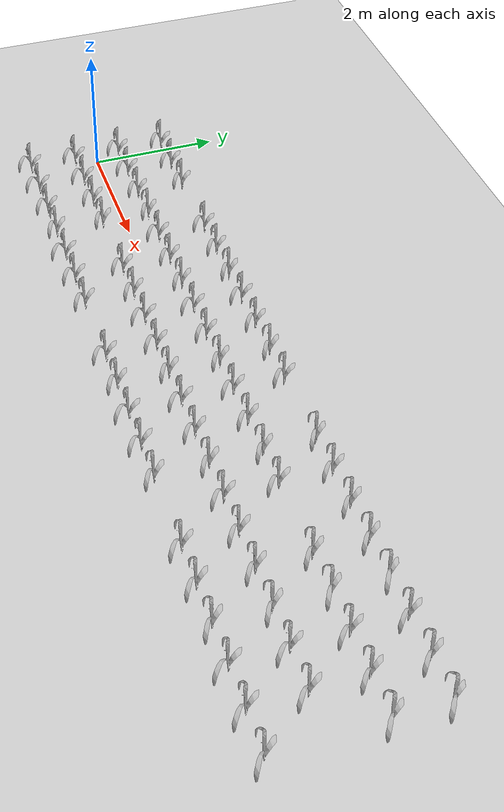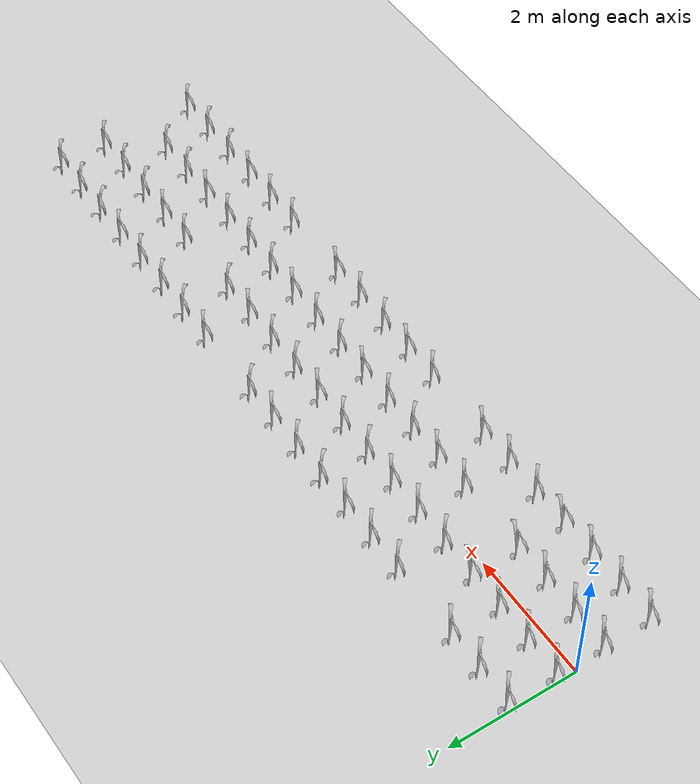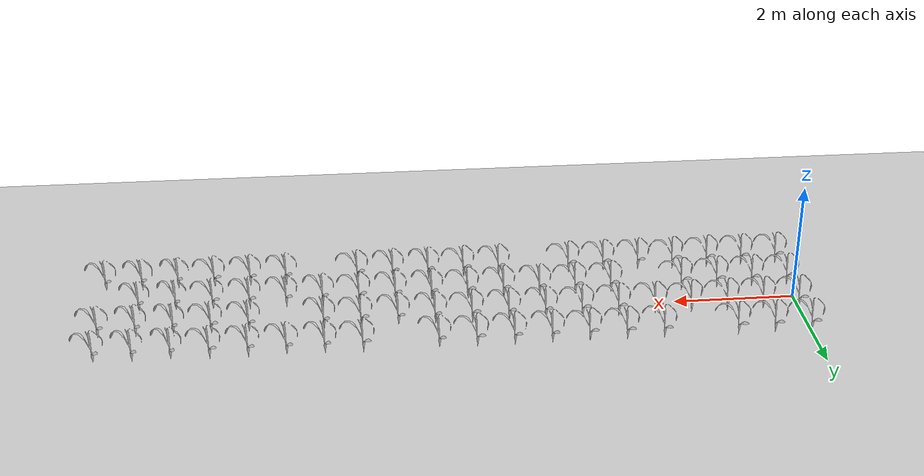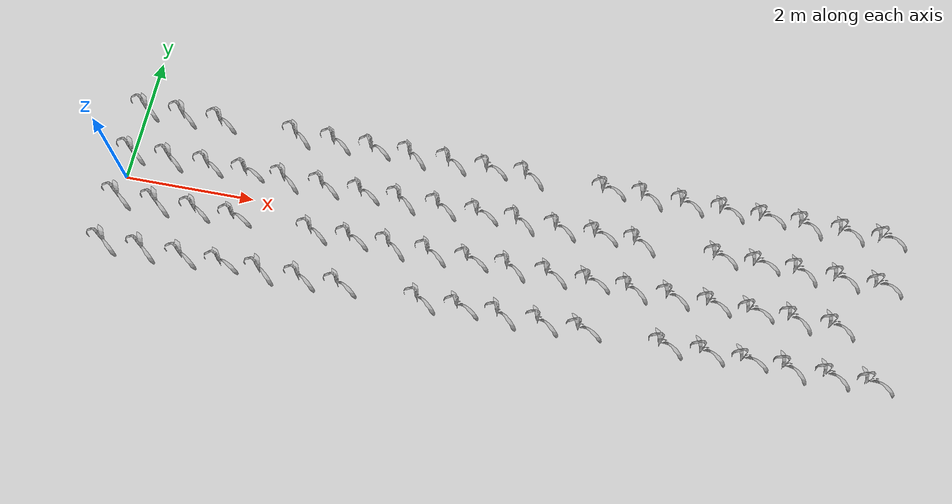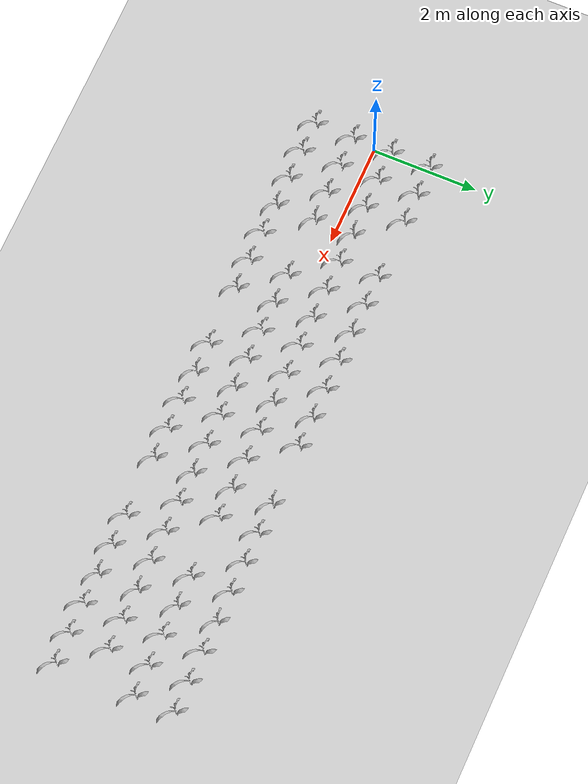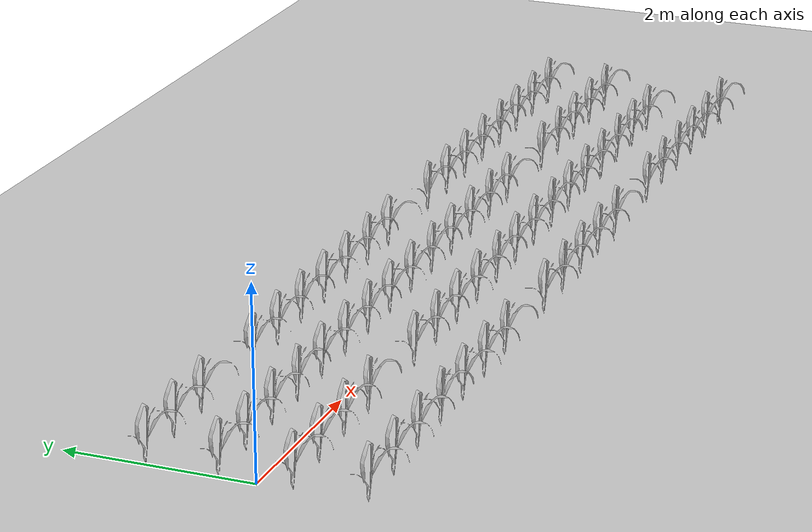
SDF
<sdf version="1.6">
 <world name="agbot_corn_rows">
  <physics type="ode">
   <max_step_size>0.001</max_step_size>
   <real_time_update_rate>1000</real_time_update_rate>
   <real_time_factor>1</real_time_factor>
  </physics>
  <scene>
   <sky><clouds><speed>12</speed></clouds></sky>
   <ambient>0.4 0.4 0.4 1</ambient>
   <background>0.7 0.7 0.7 1</background>
   <shadows>true</shadows>
  </scene>
  <include><uri>model://sun</uri></include>
  <include><uri>model://dirt_ground</uri></include>
  <include>
   <uri>model://maize_01</uri>
   <name>maize_r0_c00</name>
   <pose>0.00 -1.125 0.0  0 0 0.10</pose>
   <static>true</static>
  </include>
  <include>
   <uri>model://maize_01</uri>
   <name>maize_r0_c02</name>
   <pose>0.60 -1.125 0.0  0 0 0.08</pose>
   <static>true</static>
  </include>
  <include>
   <uri>model://maize_01</uri>
   <name>maize_r0_c04</name>
   <pose>1.20 -1.125 0.0  0 0 0.17</pose>
   <static>true</static>
  </include>
  <include>
   <uri>model://maize_01</uri>
   <name>maize_r0_c06</name>
   <pose>1.80 -1.125 0.0  0 0 0.30</pose>
   <static>true</static>
  </include>
  <include>
   <uri>model://maize_01</uri>
   <name>maize_r0_c08</name>
   <pose>2.40 -1.125 0.0  0 0 0.06</pose>
   <static>true</static>
  </include>
  <include>
   <uri>model://maize_01</uri>
   <name>maize_r0_c10</name>
   <pose>3.00 -1.125 0.0  0 0 0.14</pose>
   <static>true</static>
  </include>
  <include>
   <uri>model://maize_01</uri>
   <name>maize_r0_c12</name>
   <pose>3.60 -1.125 0.0  0 0 0.21</pose>
   <static>true</static>
  </include>
  <include>
   <uri>model://maize_01</uri>
   <name>maize_r0_c16</name>
   <pose>4.80 -1.125 0.0  0 0 0.11</pose>
   <static>true</static>
  </include>
  <include>
   <uri>model://maize_01</uri>
   <name>maize_r0_c18</name>
   <pose>5.40 -1.125 0.0  0 0 0.24</pose>
   <static>true</static>
  </include>
  <include>
   <uri>model://maize_01</uri>
   <name>maize_r0_c20</name>
   <pose>6.00 -1.125 0.0  0 0 0.07</pose>
   <static>true</static>
  </include>
  <include>
   <uri>model://maize_01</uri>
   <name>maize_r0_c22</name>
   <pose>6.60 -1.125 0.0  0 0 0.13</pose>
   <static>true</static>
  </include>
  <include>
   <uri>model://maize_01</uri>
   <name>maize_r0_c24</name>
   <pose>7.20 -1.125 0.0  0 0 0.26</pose>
   <static>true</static>
  </include>
  <include>
   <uri>model://maize_01</uri>
   <name>maize_r0_c28</name>
   <pose>8.40 -1.125 0.0  0 0 0.15</pose>
   <static>true</static>
  </include>
  <include>
   <uri>model://maize_01</uri>
   <name>maize_r0_c30</name>
   <pose>9.00 -1.125 0.0  0 0 0.19</pose>
   <static>true</static>
  </include>
  <include>
   <uri>model://maize_01</uri>
   <name>maize_r0_c32</name>
   <pose>9.60 -1.125 0.0  0 0 0.28</pose>
   <static>true</static>
  </include>
  <include>
   <uri>model://maize_01</uri>
   <name>maize_r0_c34</name>
   <pose>10.20 -1.125 0.0  0 0 0.05</pose>
   <static>true</static>
  </include>
  <include>
   <uri>model://maize_01</uri>
   <name>maize_r0_c36</name>
   <pose>10.80 -1.125 0.0  0 0 0.12</pose>
   <static>true</static>
  </include>
  <include>
   <uri>model://maize_01</uri>
   <name>maize_r0_c38</name>
   <pose>11.40 -1.125 0.0  0 0 0.22</pose>
   <static>true</static>
  </include>
  <include>
   <uri>model://maize_01</uri>
   <name>maize_r1_c00</name>
   <pose>0.00 -0.375 0.0  0 0 0.10</pose>
   <static>true</static>
  </include>
  <include>
   <uri>model://maize_01</uri>
   <name>maize_r1_c02</name>
   <pose>0.60 -0.375 0.0  0 0 0.08</pose>
   <static>true</static>
  </include>
  <include>
   <uri>model://maize_01</uri>
   <name>maize_r1_c04</name>
   <pose>1.20 -0.375 0.0  0 0 0.17</pose>
   <static>true</static>
  </include>
  <include>
   <uri>model://maize_01</uri>
   <name>maize_r1_c06</name>
   <pose>1.80 -0.375 0.0  0 0 0.30</pose>
   <static>true</static>
  </include>
  <include>
   <uri>model://maize_01</uri>
   <name>maize_r1_c10</name>
   <pose>3.00 -0.375 0.0  0 0 0.14</pose>
   <static>true</static>
  </include>
  <include>
   <uri>model://maize_01</uri>
   <name>maize_r1_c12</name>
   <pose>3.60 -0.375 0.0  0 0 0.21</pose>
   <static>true</static>
  </include>
  <include>
   <uri>model://maize_01</uri>
   <name>maize_r1_c14</name>
   <pose>4.20 -0.375 0.0  0 0 0.04</pose>
   <static>true</static>
  </include>
  <include>
   <uri>model://maize_01</uri>
   <name>maize_r1_c16</name>
   <pose>4.80 -0.375 0.0  0 0 0.11</pose>
   <static>true</static>
  </include>
  <include>
   <uri>model://maize_01</uri>
   <name>maize_r1_c18</name>
   <pose>5.40 -0.375 0.0  0 0 0.24</pose>
   <static>true</static>
  </include>
  <include>
   <uri>model://maize_01</uri>
   <name>maize_r1_c20</name>
   <pose>6.00 -0.375 0.0  0 0 0.07</pose>
   <static>true</static>
  </include>
  <include>
   <uri>model://maize_01</uri>
   <name>maize_r1_c22</name>
   <pose>6.60 -0.375 0.0  0 0 0.13</pose>
   <static>true</static>
  </include>
  <include>
   <uri>model://maize_01</uri>
   <name>maize_r1_c24</name>
   <pose>7.20 -0.375 0.0  0 0 0.26</pose>
   <static>true</static>
  </include>
  <include>
   <uri>model://maize_01</uri>
   <name>maize_r1_c26</name>
   <pose>7.80 -0.375 0.0  0 0 0.09</pose>
   <static>true</static>
  </include>
  <include>
   <uri>model://maize_01</uri>
   <name>maize_r1_c28</name>
   <pose>8.40 -0.375 0.0  0 0 0.15</pose>
   <static>true</static>
  </include>
  <include>
   <uri>model://maize_01</uri>
   <name>maize_r1_c30</name>
   <pose>9.00 -0.375 0.0  0 0 0.19</pose>
   <static>true</static>
  </include>
  <include>
   <uri>model://maize_01</uri>
   <name>maize_r1_c32</name>
   <pose>9.60 -0.375 0.0  0 0 0.28</pose>
   <static>true</static>
  </include>
  <include>
   <uri>model://maize_01</uri>
   <name>maize_r1_c34</name>
   <pose>10.20 -0.375 0.0  0 0 0.05</pose>
   <static>true</static>
  </include>
  <include>
   <uri>model://maize_01</uri>
   <name>maize_r1_c36</name>
   <pose>10.80 -0.375 0.0  0 0 0.12</pose>
   <static>true</static>
  </include>
  <include>
   <uri>model://maize_01</uri>
   <name>maize_r2_c00</name>
   <pose>0.00 0.375 0.0  0 0 0.10</pose>
   <static>true</static>
  </include>
  <include>
   <uri>model://maize_01</uri>
   <name>maize_r2_c02</name>
   <pose>0.60 0.375 0.0  0 0 0.08</pose>
   <static>true</static>
  </include>
  <include>
   <uri>model://maize_01</uri>
   <name>maize_r2_c04</name>
   <pose>1.20 0.375 0.0  0 0 0.17</pose>
   <static>true</static>
  </include>
  <include>
   <uri>model://maize_01</uri>
   <name>maize_r2_c06</name>
   <pose>1.80 0.375 0.0  0 0 0.30</pose>
   <static>true</static>
  </include>
  <include>
   <uri>model://maize_01</uri>
   <name>maize_r2_c08</name>
   <pose>2.40 0.375 0.0  0 0 0.06</pose>
   <static>true</static>
  </include>
  <include>
   <uri>model://maize_01</uri>
   <name>maize_r2_c10</name>
   <pose>3.00 0.375 0.0  0 0 0.14</pose>
   <static>true</static>
  </include>
  <include>
   <uri>model://maize_01</uri>
   <name>maize_r2_c12</name>
   <pose>3.60 0.375 0.0  0 0 0.21</pose>
   <static>true</static>
  </include>
  <include>
   <uri>model://maize_01</uri>
   <name>maize_r2_c14</name>
   <pose>4.20 0.375 0.0  0 0 0.04</pose>
   <static>true</static>
  </include>
  <include>
   <uri>model://maize_01</uri>
   <name>maize_r2_c16</name>
   <pose>4.80 0.375 0.0  0 0 0.11</pose>
   <static>true</static>
  </include>
  <include>
   <uri>model://maize_01</uri>
   <name>maize_r2_c18</name>
   <pose>5.40 0.375 0.0  0 0 0.24</pose>
   <static>true</static>
  </include>
  <include>
   <uri>model://maize_01</uri>
   <name>maize_r2_c20</name>
   <pose>6.00 0.375 0.0  0 0 0.07</pose>
   <static>true</static>
  </include>
  <include>
   <uri>model://maize_01</uri>
   <name>maize_r2_c22</name>
   <pose>6.60 0.375 0.0  0 0 0.13</pose>
   <static>true</static>
  </include>
  <include>
   <uri>model://maize_01</uri>
   <name>maize_r2_c24</name>
   <pose>7.20 0.375 0.0  0 0 0.26</pose>
   <static>true</static>
  </include>
  <include>
   <uri>model://maize_01</uri>
   <name>maize_r2_c26</name>
   <pose>7.80 0.375 0.0  0 0 0.09</pose>
   <static>true</static>
  </include>
  <include>
   <uri>model://maize_01</uri>
   <name>maize_r2_c30</name>
   <pose>9.00 0.375 0.0  0 0 0.19</pose>
   <static>true</static>
  </include>
  <include>
   <uri>model://maize_01</uri>
   <name>maize_r2_c32</name>
   <pose>9.60 0.375 0.0  0 0 0.28</pose>
   <static>true</static>
  </include>
  <include>
   <uri>model://maize_01</uri>
   <name>maize_r2_c34</name>
   <pose>10.20 0.375 0.0  0 0 0.05</pose>
   <static>true</static>
  </include>
  <include>
   <uri>model://maize_01</uri>
   <name>maize_r2_c36</name>
   <pose>10.80 0.375 0.0  0 0 0.12</pose>
   <static>true</static>
  </include>
  <include>
   <uri>model://maize_01</uri>
   <name>maize_r2_c38</name>
   <pose>11.40 0.375 0.0  0 0 0.22</pose>
   <static>true</static>
  </include>
  <include>
   <uri>model://maize_01</uri>
   <name>maize_r3_c00</name>
   <pose>0.00 1.125 0.0  0 0 0.10</pose>
   <static>true</static>
  </include>
  <include>
   <uri>model://maize_01</uri>
   <name>maize_r3_c02</name>
   <pose>0.60 1.125 0.0  0 0 0.08</pose>
   <static>true</static>
  </include>
  <include>
   <uri>model://maize_01</uri>
   <name>maize_r3_c04</name>
   <pose>1.20 1.125 0.0  0 0 0.17</pose>
   <static>true</static>
  </include>
  <include>
   <uri>model://maize_01</uri>
   <name>maize_r3_c08</name>
   <pose>2.40 1.125 0.0  0 0 0.06</pose>
   <static>true</static>
  </include>
  <include>
   <uri>model://maize_01</uri>
   <name>maize_r3_c10</name>
   <pose>3.00 1.125 0.0  0 0 0.14</pose>
   <static>true</static>
  </include>
  <include>
   <uri>model://maize_01</uri>
   <name>maize_r3_c12</name>
   <pose>3.60 1.125 0.0  0 0 0.21</pose>
   <static>true</static>
  </include>
  <include>
   <uri>model://maize_01</uri>
   <name>maize_r3_c14</name>
   <pose>4.20 1.125 0.0  0 0 0.04</pose>
   <static>true</static>
  </include>
  <include>
   <uri>model://maize_01</uri>
   <name>maize_r3_c16</name>
   <pose>4.80 1.125 0.0  0 0 0.11</pose>
   <static>true</static>
  </include>
  <include>
   <uri>model://maize_01</uri>
   <name>maize_r3_c18</name>
   <pose>5.40 1.125 0.0  0 0 0.24</pose>
   <static>true</static>
  </include>
  <include>
   <uri>model://maize_01</uri>
   <name>maize_r3_c20</name>
   <pose>6.00 1.125 0.0  0 0 0.07</pose>
   <static>true</static>
  </include>
  <include>
   <uri>model://maize_01</uri>
   <name>maize_r3_c24</name>
   <pose>7.20 1.125 0.0  0 0 0.26</pose>
   <static>true</static>
  </include>
  <include>
   <uri>model://maize_01</uri>
   <name>maize_r3_c26</name>
   <pose>7.80 1.125 0.0  0 0 0.09</pose>
   <static>true</static>
  </include>
  <include>
   <uri>model://maize_01</uri>
   <name>maize_r3_c28</name>
   <pose>8.40 1.125 0.0  0 0 0.15</pose>
   <static>true</static>
  </include>
  <include>
   <uri>model://maize_01</uri>
   <name>maize_r3_c30</name>
   <pose>9.00 1.125 0.0  0 0 0.19</pose>
   <static>true</static>
  </include>
  <include>
   <uri>model://maize_01</uri>
   <name>maize_r3_c32</name>
   <pose>9.60 1.125 0.0  0 0 0.28</pose>
   <static>true</static>
  </include>
  <include>
   <uri>model://maize_01</uri>
   <name>maize_r3_c34</name>
   <pose>10.20 1.125 0.0  0 0 0.05</pose>
   <static>true</static>
  </include>
  <include>
   <uri>model://maize_01</uri>
   <name>maize_r3_c36</name>
   <pose>10.80 1.125 0.0  0 0 0.12</pose>
   <static>true</static>
  </include>
  <include>
   <uri>model://maize_01</uri>
   <name>maize_r3_c38</name>
   <pose>11.40 1.125 0.0  0 0 0.22</pose>
   <static>true</static>
  </include>
 </world>
</sdf>

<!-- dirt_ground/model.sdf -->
<sdf version="1.6">
  <model name="dirt_ground">
    <static>true</static>
    <link name="link">
      <!-- Flat collision plane (infinite) so the robot drives on solid ground. -->
      <collision name="collision">
        <geometry>
          <plane>
            <normal>0 0 1</normal>
            <size>100 100</size>
          </plane>
        </geometry>
        <surface>
          <friction>
            <ode>
              <mu>100</mu>
              <mu2>50</mu2>
            </ode>
          </friction>
        </surface>
      </collision>

      <!-- Visual: finite dirt-textured plane covering the field. -->
      <visual name="visual">
        <cast_shadows>false</cast_shadows>
        <geometry>
          <plane>
            <normal>0 0 1</normal>
            <size>50 50</size>
          </plane>
        </geometry>
        <material>
          <script>
            <uri>model://dirt_ground/materials/scripts</uri>
            <uri>model://dirt_ground/materials/textures</uri>
            <name>DirtGround/Diffuse</name>
          </script>
        </material>
      </visual>
    </link>
  </model>
</sdf>

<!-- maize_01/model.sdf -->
<sdf version="1.6">
  <model name='maize_01'>
    <pose frame=''>0 0 0.05 0 -0 0</pose>
    <link name='maize_01_link'>
      <inertial>
        <pose>0 0 0.01 0 0 0</pose>
        <mass>0.3</mass>
        <inertia>
          <ixx>0.0033416667</ixx>
          <ixy>0</ixy>
          <ixz>0</ixz>
          <iyy>0.0033416667</iyy>
          <iyz>0</iyz>
          <izz>0.000016666667</izz>
        </inertia>
        <pose>0 0 0.1 0 0 0</pose>
      </inertial>
      <collision name='collision'>
        <pose>0 0 0.2 0 -0 0</pose>
        <geometry>
          <box>
            <size>0.02 0.02 0.4</size>
          </box>
        </geometry>
        <max_contacts>10</max_contacts>
        <surface>
          <contact>
            <ode/>
          </contact>
          <bounce/>
          <friction>
            <ode>
              <mu>10</mu>
              <mu2>10</mu2>
            </ode>
          </friction>
        </surface>
      </collision>
      <visual name='visual'>
        <geometry>
          <mesh>
            <uri>model://maize_01/meshes/maize_01.dae</uri>
            <scale>0.683166466464586 0.683166466464586 0.683166466464586</scale>
          </mesh>
        </geometry>
      </visual>
      <self_collide>0</self_collide>
      <enable_wind>0</enable_wind>
      <kinematic>0</kinematic>
    </link>
  </model>
</sdf>
